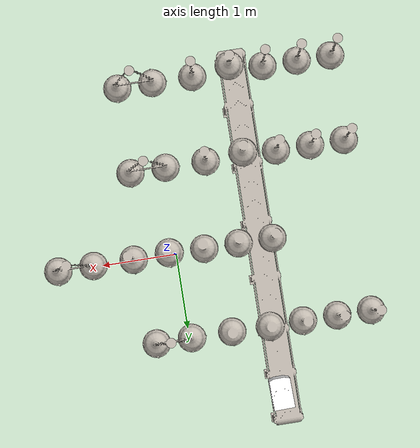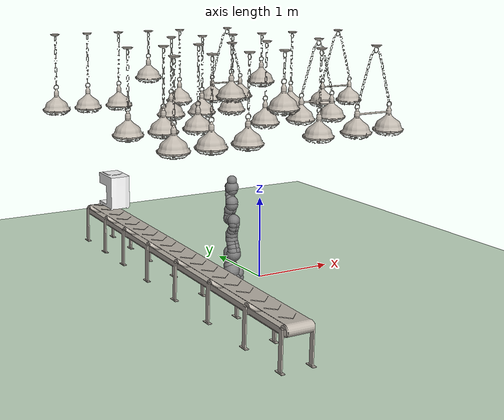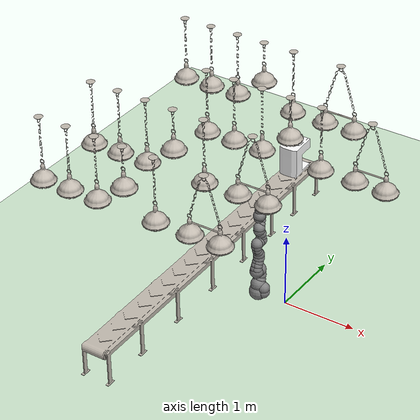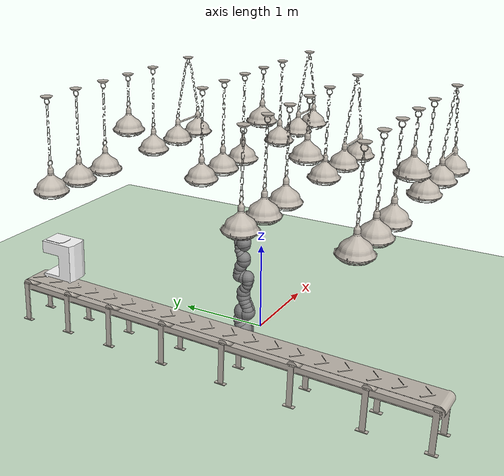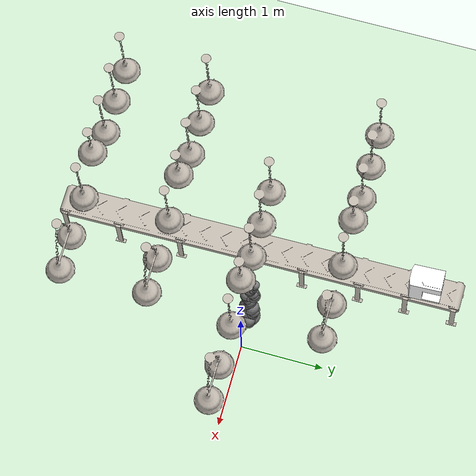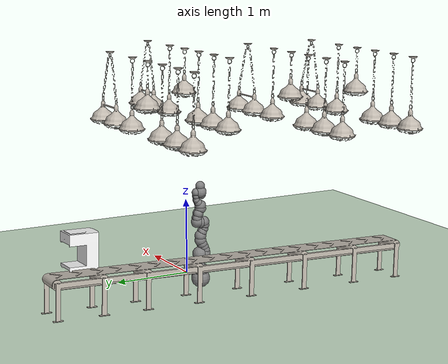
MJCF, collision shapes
<mujoco model="iiwa14 scene">
	<include file="iiwa14.xml" />
	<asset>
		<texture type="skybox" builtin="gradient" rgb1="0.3 0.5 0.7" rgb2="0 0 0" width="512"
			height="3072" />
		<texture type="2d" name="groundplane" builtin="checker" mark="edge" rgb1="0.2 0.3 0.4"
			rgb2="0.1 0.2 0.3"
			markrgb="0.8 0.8 0.8" width="300" height="300" />
		<material name="groundplane" texture="groundplane" texuniform="true" texrepeat="5 5"
			reflectance="0.2" />
		<texture name="ground_tex" type="2d" builtin="checker" width="512" height="512"
			rgb1="0.2 0.3 0.2" rgb2="0.1 0.1 0.1" />
		<material name="mat_ground" texture="ground_tex" texrepeat="5 5" reflectance="0.2" />

		<mesh name="conveyor" file="conveyor/ConveyorBelt.obj" scale="0.015 0.015 0.015" />
		<material name="conveyor_mat" texture="conveyor_tex" reflectance="0.3" />
		<texture name="conveyor_tex" type="2d"
			file="assets/conveyor/ConveyorBelt.png" />

		<mesh name="ceiling_lights" file="ceilingLights/model.obj" scale="1 1 1" />
		<material name="ceiling_lights_mat" texture="ceiling_lights_tex" reflectance="0.3" />
		<texture name="ceiling_lights_tex" type="2d"
			file="assets/ceilingLights/_img0.png" />

		<mesh name="coffee_machine" file="coffeeMachine/model.obj" scale="0.3 0.3 0.3" />
		<material name="coffee_machine_mat" reflectance="0.3" />

	</asset>
	<worldbody>
		<light name="main_light" pos="0 0 3" dir="0 0 -1" directional="true" />
		<!-- Larger floor for factory setting -->
		<geom name="floor" type="plane" pos="0 0 -0.1" size="30 30 0.1" rgba="0.8 0.9 0.8 1"
			material="mat_ground" />
		<!-- Conveyor belt - try fine-tuning with these values -->
		<body name="conveyor" pos="-1.27 0 0" euler="1.6 0 0">
			<geom type="mesh" mesh="conveyor" material="conveyor_mat" />
		</body>

		<body name="ceiling_lights_1" pos="0 0 3" euler="1.6 0 0">
			<geom type="mesh" mesh="ceiling_lights" material="ceiling_lights_mat" />
		</body>
		<body name="ceiling_lights_2" pos="-1.0 1 3" euler="1.6 0 0">
			<geom type="mesh" mesh="ceiling_lights" material="ceiling_lights_mat" />
		</body>
		<body name="ceiling_lights_3" pos="-1.0 -1 3" euler="1.6 0 0">
			<geom type="mesh" mesh="ceiling_lights" material="ceiling_lights_mat" />
		</body>
		<body name="ceiling_lights_5" pos="-1.0 -2 3" euler="1.6 0 0">
			<geom type="mesh" mesh="ceiling_lights" material="ceiling_lights_mat" />
		</body>

		<body name="coffee_machine_body" pos="-1.07 2 0.8" euler="1.6 1.6 0">
			<joint name="coffee_slide" type="slide" axis="1 0 0" limited="true" range="-2 0"/>
			<geom type="mesh" mesh="coffee_machine" material="coffee_machine_mat" />
		</body>

	</worldbody>
</mujoco>

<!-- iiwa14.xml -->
<mujoco model="iiwa14">
  <compiler angle="radian" meshdir="assets" autolimits="true"/>

  <option integrator="implicitfast"/>

  <default>
    <default class="iiwa">
      <material specular="0.5" shininess="0.25"/>
      <joint axis="0 0 1"/>
      <general gaintype="fixed" biastype="affine" gainprm="2000" biasprm="0 -2000 -200"/>
      <default class="joint1">
        <joint range="-2.96706 2.96706"/>
        <general ctrlrange="-2.96706 2.96706"/>
        <default class="joint2">
          <joint range="-2.0944 2.0944"/>
          <general ctrlrange="-2.0944 2.0944"/>
        </default>
      </default>
      <default class="joint3">
        <joint range="-3.05433 3.05433"/>
        <general ctrlrange="-3.05433 3.05433"/>
      </default>
      <default class="visual">
        <geom type="mesh" contype="0" conaffinity="0" group="2" material="gray"/>
      </default>
      <default class="collision">
        <geom group="3"/>
      </default>
      <site size="0.001" rgba="1 0 0 1" group="4"/>
    </default>
  </default>

  <asset>
    <material class="iiwa" name="gray" rgba="0.4 0.4 0.4 1"/>
    <material class="iiwa" name="light_gray" rgba="0.6 0.6 0.6 1"/>
    <material class="iiwa" name="black" rgba="0 0 0 1"/>
    <material class="iiwa" name="orange" rgba="1 0.423529 0.0392157 1"/>

    <mesh file="link_0.obj"/>
    <mesh file="link_1.obj"/>
    <mesh file="link_2_orange.obj"/>
    <mesh file="link_2_grey.obj"/>
    <mesh file="link_3.obj"/>
    <mesh file="band.obj"/>
    <mesh file="kuka.obj"/>
    <mesh file="link_4_orange.obj"/>
    <mesh file="link_4_grey.obj"/>
    <mesh file="link_5.obj"/>
    <mesh file="link_6_orange.obj"/>
    <mesh file="link_6_grey.obj"/>
    <mesh file="link_7.obj"/>
  </asset>

  <worldbody>
    <light name="top" pos="0 0 2" mode="trackcom"/>
    <body name="base" childclass="iiwa" quat="0 0 0 1" pos="-0.4 0 0">
      <inertial mass="5" pos="-0.1 0 0.07" diaginertia="0.05 0.06 0.03"/>
      <geom class="visual" mesh="link_0"/>
      <geom class="collision" size="0.12" pos="0 0 0.03"/>
      <geom class="collision" size="0.08" pos="-0.08 0 0.103"/>
      <geom class="collision" size="0.08" pos="-0.08 0 0.04"/>
      <geom class="collision" size="0.1" pos="0 0 0.14"/>
      <body name="link1" pos="0 0 0.1575">
        <inertial mass="5.76" pos="0 -0.03 0.12" diaginertia="0.0333 0.033 0.0123"/>
        <joint name="joint1" class="joint1"/>
        <geom class="visual" mesh="link_1"/>
        <geom class="collision" size="0.08" pos="0 0 -0.0005"/>
        <geom class="collision" size="0.075" pos="0.01 -0.025 0.0425"/>
        <geom class="collision" size="0.075" pos="-0.01 -0.025 0.0425"/>
        <geom class="collision" size="0.07" pos="0.01 -0.045 0.1025"/>
        <geom class="collision" size="0.07" pos="-0.01 -0.045 0.1025"/>
        <body name="link2" pos="0 0 0.2025" quat="0 0 1 1">
          <inertial mass="6.35" pos="0.0003 0.059 0.042" diaginertia="0.0305 0.0304 0.011" quat="0 0 1 1"/>
          <joint name="joint2" class="joint2"/>
          <geom class="visual" material="orange" mesh="link_2_orange"/>
          <geom class="visual" mesh="link_2_grey"/>
          <geom class="collision" size="0.095" pos="0 0 -0.01"/>
          <geom class="collision" size="0.09" pos="0 0 0.045"/>
          <geom class="collision" size="0.07" pos="-0.01 0.04 0.054"/>
          <geom class="collision" size="0.065" pos="-0.01 0.09 0.04"/>
          <geom class="collision" size="0.065" pos="-0.01 0.13 0.02"/>
          <geom class="collision" size="0.07" pos="0.01 0.04 0.054"/>
          <geom class="collision" size="0.065" pos="0.01 0.09 0.04"/>
          <geom class="collision" size="0.065" pos="0.01 0.13 0.02"/>
          <geom class="collision" size="0.075" pos="0 0.18 0"/>
          <body name="link3" pos="0 0.2045 0" quat="0 0 1 1">
            <inertial mass="3.5" pos="0 0.03 0.13" diaginertia="0.025 0.0238 0.0076"/>
            <joint name="joint3" class="joint1"/>
            <geom class="visual" mesh="link_3"/>
            <geom class="visual" material="light_gray" mesh="band"/>
            <geom class="visual" material="black" mesh="kuka"/>
            <geom class="collision" size="0.075" pos="0 0 0.0355"/>
            <geom class="collision" size="0.06" pos="0.01 0.023 0.0855"/>
            <geom class="collision" size="0.055" pos="0.01 0.048 0.1255"/>
            <geom class="collision" size="0.06" pos="0.01 0.056 0.1755"/>
            <geom class="collision" size="0.06" pos="-0.01 0.023 0.0855"/>
            <geom class="collision" size="0.055" pos="-0.01 0.048 0.1255"/>
            <geom class="collision" size="0.06" pos="-0.01 0.056 0.1755"/>
            <geom class="collision" size="0.075" pos="0 0.045 0.2155"/>
            <geom class="collision" size="0.075" pos="0 0 0.2155"/>
            <body name="link4" pos="0 0 0.2155" quat="1 1 0 0">
              <inertial mass="3.5" pos="0 0.067 0.034" diaginertia="0.017 0.0164 0.006" quat="1 1 0 0"/>
              <joint name="joint4" class="joint2"/>
              <geom class="visual" material="orange" mesh="link_4_orange"/>
              <geom class="visual" mesh="link_4_grey"/>
              <geom class="collision" size="0.078" pos="0 0.01 0.046"/>
              <geom class="collision" size="0.06" pos="0.01 0.06 0.052"/>
              <geom class="collision" size="0.065" pos="0.01 0.12 0.034"/>
              <geom class="collision" size="0.06" pos="-0.01 0.06 0.052"/>
              <geom class="collision" size="0.065" pos="-0.01 0.12 0.034"/>
              <geom class="collision" size="0.075" pos="0 0.184 0"/>
              <body name="link5" pos="0 0.1845 0" quat="0 0 1 1">
                <inertial mass="3.5" pos="0.0001 0.021 0.076" diaginertia="0.01 0.0087 0.00449"/>
                <joint name="joint5" class="joint1"/>
                <geom class="visual" mesh="link_5"/>
                <geom class="visual" material="light_gray" mesh="band"/>
                <geom class="visual" material="black" mesh="kuka"/>
                <geom class="collision" size="0.075" pos="0 0 0.0335"/>
                <geom class="collision" size="0.05" pos="-0.012 0.031 0.0755"/>
                <geom class="collision" size="0.05" pos="0.012 0.031 0.0755"/>
                <geom class="collision" size="0.04" pos="-0.012 0.06 0.1155"/>
                <geom class="collision" size="0.04" pos="0.012 0.06 0.1155"/>
                <geom class="collision" size="0.04" pos="-0.01 0.065 0.1655"/>
                <geom class="collision" size="0.04" pos="0.01 0.065 0.1655"/>
                <geom class="collision" size="0.035" pos="-0.012 0.065 0.1855"/>
                <geom class="collision" size="0.035" pos="0.012 0.065 0.1855"/>
                <body name="link6" pos="0 0 0.2155" quat="1 1 0 0">
                  <inertial mass="1.8" pos="0 0.0006 0.0004" diaginertia="0.0049 0.0047 0.0036" quat="1 1 0 0"/>
                  <joint name="joint6" class="joint2"/>
                  <geom class="visual" material="orange" mesh="link_6_orange"/>
                  <geom class="visual" mesh="link_6_grey"/>
                  <geom class="collision" size="0.055" pos="0 0 -0.059"/>
                  <geom class="collision" size="0.065" pos="0 -0.03 0.011"/>
                  <geom class="collision" size="0.08"/>
                  <body name="link7" pos="0 0.081 0" quat="0 0 1 1">
                    <inertial mass="1.2" pos="0 0 0.02" diaginertia="0.001 0.001 0.001"/>
                    <joint name="joint7" class="joint3"/>
                    <geom class="visual" mesh="link_7"/>
                    <geom class="collision" size="0.06" pos="0 0 0.001"/>
                    <site pos="0 0 0.045" name="attachment_site"/>
                  </body>
                </body>
              </body>
            </body>
          </body>
        </body>
      </body>
    </body>
  </worldbody>

  <contact>
    <exclude body1="base" body2="link1"/>
    <exclude body1="base" body2="link2"/>
    <exclude body1="base" body2="link3"/>
    <exclude body1="link1" body2="link3"/>
    <exclude body1="link3" body2="link5"/>
    <exclude body1="link4" body2="link7"/>
    <exclude body1="link5" body2="link7"/>
  </contact>

  <actuator>
    <general name="actuator1" joint="joint1" class="joint1"/>
    <general name="actuator2" joint="joint2" class="joint2"/>
    <general name="actuator3" joint="joint3" class="joint1"/>
    <general name="actuator4" joint="joint4" class="joint2"/>
    <general name="actuator5" joint="joint5" class="joint1"/>
    <general name="actuator6" joint="joint6" class="joint2"/>
    <general name="actuator7" joint="joint7" class="joint3"/>
  </actuator>

  <keyframe>
    <key name="home" qpos="0 0.785398 0 -1.5708 0 0 0" ctrl="0 0.785398 0 -1.5708 0 0 0"/>
  </keyframe>
</mujoco>
